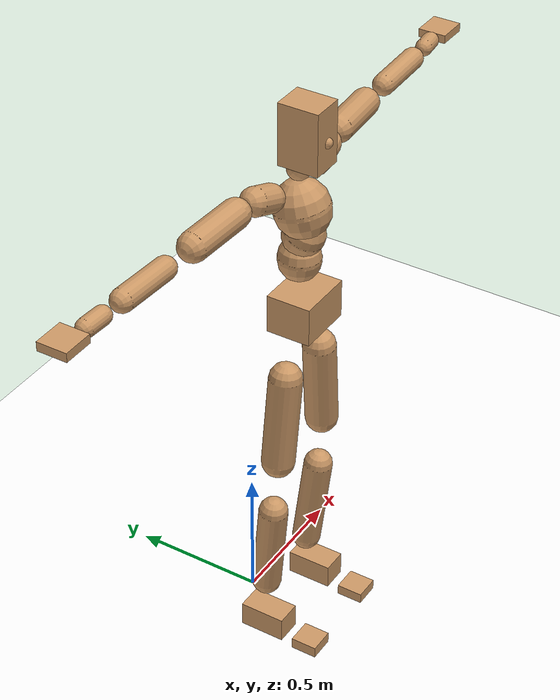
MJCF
<mujoco model="humanoid">
  <option integrator="implicitfast" />

  <visual>
    <global offwidth="1280" offheight="960" />
    <headlight active="1" ambient="0.34 0.34 0.34" diffuse="0.5 0.5 0.5" />
  </visual>

  <default>
    <joint damping="2" stiffness="2" armature="0.01" limited="true" solimplimit="0 .99 .01" />
    <geom condim="1" friction="0.7 0.005 0.0001" solimp=".99 .99 .003" solref="0.015 1" margin="0.001" rgba="0.8 0.6 .4 1" />
    <default class="smplcontact">
      <geom condim="3" friction="1. 0.005 0.0001" solref="0.015 1" solimp="0.98 0.98 0.001" priority="1" />
    </default>
    <default class="stiff_medium">
      <joint stiffness="10" />
    </default>
    <default class="stiff_medium_higher">
      <joint stiffness="50" />
    </default>
    <default class="stiff_high">
      <joint stiffness="100" />
    </default>
  </default>

  <asset>
    <texture type="skybox" builtin="gradient" rgb1="0.99 0.99 0.99" rgb2="0.608 0.828 0.892" width="100" />
    <texture builtin="flat" height="1278" mark="cross" markrgb="1 1 1" name="texgeom" random="0.01" rgb1="0.8 0.6 0.4" rgb2="0.8 0.6 0.4" type="cube" width="127" />
    <texture name="texplane" type="2d" builtin="checker" markrgb="1 1 1" rgb1="0.756 0.772 0.76" rgb2="0.6 0.6 0.6" width="100" height="100" />
    <material name="MatPlane" reflectance="0.5" texture="texplane" texrepeat="1 1" texuniform="true" />
    <material name="geom" texture="texgeom" texuniform="true" />
  </asset>

  <worldbody>
    <light name="tracking_light" pos="0 0 7" dir="0 0 -1" directional="true" cutoff="100" exponent="1" diffuse="1 1 1" specular="0.1 0.1 0.1" mode="trackcom" />
    <camera name="back" pos="0 3 2.4" xyaxes="-1 0 0 0 -1 2" mode="trackcom" />
    <camera name="side" pos="-3 0 2.4" xyaxes="0 -1 0 1 0 2" mode="trackcom" />
    <camera name="front_side" pos="-2.8 -2.8 0.8" xyaxes="0.5 -0.5 0 0.1 0.1 1" mode="trackcom" />
    <geom condim="3" name="floor" pos="0 0 0" rgba="1 1 1 1" size="100 100 .2" type="plane" material="MatPlane" />
    <body name="Pelvis" pos="-0.0018 -0.2233 1.39425" euler="90 0 0">
      <site name="Pelvis" size="0.01" />
      <freejoint name="Pelvis" />
      <geom type="box" pos="-0.0000 -0.0121 -0.0055" size="0.1069 0.0722 0.083" quat="1.0000 0.0000 0.0000 0.0000" density="3165.830099" name="Pelvis" />
      <body name="L_Hip" pos="0.10425 -0.1371 -0.0102">
        <joint name="L_Hip_x" type="hinge" pos="0 0 0" axis="1 0 0" stiffness="20.015620714285713" range="-160.0 22.92" class="stiff_medium" damping="35.83287359117287" armature="0.02851095036953482"/>
        <joint name="L_Hip_y" type="hinge" pos="0 0 0" axis="0 1 0" stiffness="19.866269693877552" range="-70.0 70.0" class="stiff_medium" damping="19.516878138369275" armature="0.01917363139318229"/>
        <joint name="L_Hip_z" type="hinge" pos="0 0 0" axis="0 0 1" stiffness="19.87905693877551" range="-28.65 90.0" class="stiff_medium" damping="23.812563344986483" armature="0.028524400066129184"/>
        <geom type="capsule" density="2040.816327" fromto="0.01035 -0.1125 -0.00135 0.0411 -0.4503 -0.0054" size="0.0615" name="L_Hip" />
        <body name="L_Knee" pos="0.05145 -0.5628 -0.00675">
          <joint name="L_Knee_x" type="hinge" pos="0 0 0" axis="1 0 0" range="-5.16 171.89" damping="17.99088108060037" armature="0.026396428561925714" stiffness="3.8318607346938776"/>
          <joint name="L_Knee_y" type="hinge" pos="0 0 0" axis="0 1 0" range="-4.58 6.88" damping="14.933138115539819" armature="0.017722990590982583" stiffness="3.932015113945578"/>
          <joint name="L_Knee_z" type="hinge" pos="0 0 0" axis="0 0 1" range="-6.88 4.58" damping="17.905219969869155" armature="0.02645515953053641" stiffness="3.7870318571428574"/>
          <geom type="capsule" density="1234.567901" fromto="-0.00405 -0.1194 -0.01305 -0.01635 -0.4776 -0.0525" size="0.0541" name="L_Knee" />
          <body name="L_Ankle" pos="-0.0204 -0.597 -0.06555">
            <joint name="L_Ankle_x" type="hinge" pos="0 0 0" axis="1 0 0" range="-45.84 45.84" class="stiff_medium" damping="9.919510798854784" armature="0.01822161009048087" stiffness="15.0"/>
            <joint name="L_Ankle_y" type="hinge" pos="0 0 0" axis="0 1 0" range="-74.48 22.92" class="stiff_medium" damping="4.917952818000751" armature="0.017915748088949288" stiffness="15.0"/>
            <joint name="L_Ankle_z" type="hinge" pos="0 0 0" axis="0 0 1" range="-4.58 4.58" class="stiff_medium" damping="9.26996898132537" armature="0.015913393502728614" stiffness="15.0"/>
            <geom type="box" pos="0.03495 -0.03585 0.0363" size="0.0483 0.0464 0.085" quat="1.0000 0.0000 0.0000 0.0000" density="449.071558" name="L_Ankle" class="smplcontact" />
            <body name="L_Toe" pos="0.0396 -0.0837 0.17895">
              <joint name="L_Toe_x" type="hinge" pos="0 0 0" axis="1 0 0" range="-91.67 22.92" armature="0.014752348892846632" damping="2.9751318182070485" stiffness="3.0"/>
              <joint name="L_Toe_y" type="hinge" pos="0 0 0" axis="0 1 0" range="-4.58 4.58" armature="0.013348413454862205" damping="2.8300261611718933" stiffness="3.0"/>
              <joint name="L_Toe_z" type="hinge" pos="0 0 0" axis="0 0 1" range="-4.58 4.58" armature="0.01050973156573245" damping="2.5111429547995607" stiffness="3.0"/>
              <geom type="box" pos="-0.0045 0.00825 0.0372" size="0.0478 0.02 0.0496" quat="1.0000 0.0000 0.0000 0.0000" density="423.206892" name="L_Toe" class="smplcontact" />
            </body>
          </body>
        </body>
      </body>
      <body name="R_Hip" pos="-0.10155 -0.13575 -0.00645">
        <joint name="R_Hip_x" type="hinge" pos="0 0 0" axis="1 0 0" stiffness="20.015620714285713" range="-160.0 22.92" class="stiff_medium" damping="35.83287359117287" armature="0.02851095036953482"/>
        <joint name="R_Hip_y" type="hinge" pos="0 0 0" axis="0 1 0" stiffness="19.866269693877552" range="-70.0 70.0" class="stiff_medium" damping="19.516878138369275" armature="0.01917363139318229"/>
        <joint name="R_Hip_z" type="hinge" pos="0 0 0" axis="0 0 1" stiffness="19.87905693877551" range="-90.0 28.65" class="stiff_medium" damping="23.812563344986483" armature="0.028524400066129184"/>
        <geom type="capsule" density="2040.816327" fromto="-0.01155 -0.11475 -0.0027 -0.0459 -0.45915 -0.01065" size="0.0606" name="R_Hip" />
        <body name="R_Knee" pos="-0.05745 -0.5739 -0.01335">
          <joint name="R_Knee_x" type="hinge" pos="0 0 0" axis="1 0 0" range="-5.16 171.89" damping="17.99088108060037" armature="0.026396428561925714" stiffness="3.8318607346938776"/>
          <joint name="R_Knee_y" type="hinge" pos="0 0 0" axis="0 1 0" range="-6.88 4.58" damping="14.933138115539819" armature="0.017722990590982583" stiffness="3.932015113945578"/>
          <joint name="R_Knee_z" type="hinge" pos="0 0 0" axis="0 0 1" range="-4.58 6.88" damping="17.905219969869155" armature="0.02645515953053641" stiffness="3.7870318571428574"/>
          <geom type="capsule" density="1234.567901" fromto="0.0048 -0.11955 -0.01275 0.0189 -0.47805 -0.0507" size="0.0541" name="R_Knee" />
          <body name="R_Ankle" pos="0.0237 -0.5976 -0.06345">
            <joint name="R_Ankle_x" type="hinge" pos="0 0 0" axis="1 0 0" range="-45.84 45.84" class="stiff_medium" damping="9.919510798854784" armature="0.01822161009048087" stiffness="15.0"/>
            <joint name="R_Ankle_y" type="hinge" pos="0 0 0" axis="0 1 0" range="-22.92 74.48" class="stiff_medium" damping="4.917952818000751" armature="0.017915748088949288" stiffness="15.0"/>
            <joint name="R_Ankle_z" type="hinge" pos="0 0 0" axis="0 0 1" range="-4.58 4.58" class="stiff_medium" damping="9.26996898132537" armature="0.015913393502728614" stiffness="15.0"/>
            <geom type="box" pos="-0.0318 -0.0261 0.0384" size="0.0483 0.0478 0.0865" quat="1.0000 0.0000 0.0000 0.0000" density="434.700981" name="R_Ankle" class="smplcontact" />
            <body name="R_Toe" pos="-0.0381 -0.07215 0.18495">
              <joint name="R_Toe_x" type="hinge" pos="0 0 0" axis="1 0 0" range="-91.67 22.92" armature="0.014752348892846632" damping="2.9751318182070485" stiffness="3.0"/>
              <joint name="R_Toe_y" type="hinge" pos="0 0 0" axis="0 1 0" range="-4.58 4.58" armature="0.013348413454862205" damping="2.8300261611718933" stiffness="3.0"/>
              <joint name="R_Toe_z" type="hinge" pos="0 0 0" axis="0 0 1" range="-4.58 4.58" armature="0.01050973156573245" damping="2.5111429547995607" stiffness="3.0"/>
              <geom type="box" pos="0.0063 0.00675 0.03405" size="0.0479 0.0216 0.0493" quat="1.0000 0.0000 0.0000 0.0000" density="407.384095" name="R_Toe" class="smplcontact" />
            </body>
          </body>
        </body>
      </body>
      <body name="Torso" pos="-0.0025 0.109 -0.0267">
        <joint name="Torso_x" type="hinge" pos="0 0 0" axis="1 0 0" range="-25.78 57.3" class="stiff_medium" damping="17.81661784253542" armature="0.012204442824088032" stiffness="11.55979291666667"/>
        <joint name="Torso_y" type="hinge" pos="0 0 0" axis="0 1 0" range="-57.3 57.3" class="stiff_high" damping="32.66648617457636" armature="0.023482633249027433" stiffness="113.6051595744681"/>
        <joint name="Torso_z" type="hinge" pos="0 0 0" axis="0 0 1" range="-34.38 34.38" class="stiff_high" damping="26.53205559463283" armature="0.016035100718302133" stiffness="109.75141136363638"/>
        <geom type="capsule" density="2040.816327" fromto="0.0025 0.0608 0.0005 0.003 0.0743 0.0006" size="0.0769" name="Torso" />
        <body name="Spine" pos="0.0055 0.1352 0.0011">
          <joint name="Spine_x" type="hinge" pos="0 0 0" axis="1 0 0" stiffness="11.652306458333332" range="-25.78 57.3" class="stiff_medium" damping="18.346849955919502" armature="0.012838923235543203"/>
          <joint name="Spine_y" type="hinge" pos="0 0 0" axis="0 1 0" stiffness="12.490174523809525" range="-57.3 57.3" class="stiff_high" damping="13.727844217436887" armature="0.023575244397477886"/>
          <joint name="Spine_z" type="hinge" pos="0 0 0" axis="0 0 1" stiffness="24.140002666666668" range="-34.38 34.38" class="stiff_high" damping="18.060617405335822" armature="0.018767022520783622"/>
          <geom type="capsule" density="2040.816327" fromto="0.0007 0.0238 0.0114 0.0008 0.0291 0.014" size="0.0755" name="Spine" />
          <body name="Chest" pos="0.0015 0.0529 0.0254">
            <joint name="Chest_x" type="hinge" pos="0 0 0" axis="1 0 0" stiffness="12.52777088888889" range="-25.78 57.3" class="stiff_medium" damping="19.323420684641803" armature="0.013246821899117767"/>
            <joint name="Chest_y" type="hinge" pos="0 0 0" axis="0 1 0" stiffness="14.856075609756099" range="-57.3 57.3" class="stiff_high" damping="14.973397185345426" armature="0.02358069574104024"/>
            <joint name="Chest_z" type="hinge" pos="0 0 0" axis="0 0 1" stiffness="24.504841860465113" range="-34.38 34.38" class="stiff_high" damping="18.776413152497923" armature="0.019982087898338156"/>
            <geom type="capsule" density="2040.816327" fromto="-0.0009 0.0682 -0.0173 -0.001 0.0833 -0.0212" size="0.1002" name="Chest" />
            <body name="Neck" pos="-0.0028 0.2139 -0.0429">
              <joint name="Neck_x" type="hinge" pos="0 0 0" axis="1 0 0" range="-28.65 57.3" class="stiff_medium_higher" damping="9.99999999999999" armature="0.00999999999999998" stiffness="50.0"/>
              <joint name="Neck_y" type="hinge" pos="0 0 0" axis="0 1 0" range="-40.11 40.11" class="stiff_medium_higher" damping="10.0" armature="0.01" stiffness="50.0"/>
              <joint name="Neck_z" type="hinge" pos="0 0 0" axis="0 0 1" range="-40.11 40.11" class="stiff_medium_higher" damping="9.999999999999996" armature="0.009999999999999993" stiffness="50.0"/>
              <geom type="capsule" density="1000" fromto="0.001 0.013 0.0103 0.0041 0.052 0.0411" size="0.0436" name="Neck" />
              <body name="Head" pos="0.0052 0.065 0.0513">
                <joint name="Head_x" type="hinge" pos="0 0 0" axis="1 0 0" range="-28.65 57.3" class="stiff_medium_higher" damping="1.9999999999999996" armature="0.009999999999999995" stiffness="50.0"/>
                <joint name="Head_y" type="hinge" pos="0 0 0" axis="0 1 0" range="-40.11 40.11" class="stiff_medium_higher" damping="2.0" armature="0.01" stiffness="50.0"/>
                <joint name="Head_z" type="hinge" pos="0 0 0" axis="0 0 1" range="-40.11 40.11" class="stiff_medium_higher" damping="2.000000000000002" armature="0.010000000000000024" stiffness="50.0"/>
                <geom type="box" pos="-0.0042 0.0876 -0.0116" size="0.0606 0.1154 0.076" quat="1.0000 0.0000 0.0000 0.0000" density="1018.069894" name="Head" />
                <geom type="capsule" name="nose" size="0.02 0.01" pos="0 0.07 0.05" quat="1 0 0 0" mass="0" contype="0" conaffinity="0" />
              </body>
            </body>
            <body name="L_Thorax" pos="0.11032 0.17038 -0.04774">
              <joint name="L_Thorax_x" type="hinge" pos="0 0 0" axis="1 0 0" range="-10.89 4.58" class="stiff_medium_higher" damping="36.24085805879008" armature="0.018856138634744495" stiffness="87.06712295918368"/>
              <joint name="L_Thorax_y" type="hinge" pos="0 0 0" axis="0 1 0" range="-28.65 17.19" class="stiff_medium_higher" damping="40.96620891880995" armature="0.02389813212990586" stiffness="87.78041020408163"/>
              <joint name="L_Thorax_z" type="hinge" pos="0 0 0" axis="0 0 1" range="-31.51 40.11" class="stiff_medium_higher" damping="40.96835729355361" armature="0.023902786052476366" stiffness="87.77252448979593"/>
              <geom type="capsule" density="1000" fromto="0.02548 0.00854 -0.00252 0.10192 0.03416 -0.00994" size="0.0521" name="L_Thorax" />
              <body name="L_Shoulder" pos="0.1274 0.0427 -0.01246">
                <joint name="L_Shoulder_x" type="hinge" pos="0 0 0" axis="1 0 0" range="-97.4 97.4" class="stiff_medium" damping="10.216467793124856" armature="0.016750975720821605" stiffness="17.30848"/>
                <joint name="L_Shoulder_y" type="hinge" pos="0 0 0" axis="0 1 0" range="-108.86 80.21" class="stiff_medium" damping="12.210584630805666" armature="0.023662310849895674" stiffness="17.503030918367347"/>
                <joint name="L_Shoulder_z" type="hinge" pos="0 0 0" axis="0 0 1" range="-97.4 85.94" class="stiff_medium" damping="12.207996623471665" armature="0.02366780094775564" stiffness="17.491553877551024"/>
                <geom type="capsule" density="1000" fromto="0.07266 -0.00364 -0.0077 0.29078 -0.01428 -0.0308" size="0.0517" name="L_Shoulder" />
                <body name="L_Elbow" pos="0.36344 -0.01792 -0.0385">
                  <joint name="L_Elbow_x" type="hinge" pos="0 0 0" axis="1 0 0" range="-17.19 4.58" damping="7.586581525572629" armature="0.013620348817446497" stiffness="3.380601775510204"/>
                  <joint name="L_Elbow_y" type="hinge" pos="0 0 0" axis="0 1 0" range="-180.0 17.19" damping="9.758671052618116" armature="0.022523674987219192" stiffness="3.382455510204082"/>
                  <joint name="L_Elbow_z" type="hinge" pos="0 0 0" axis="0 0 1" range="-100.84 4.58" damping="9.760335979040741" armature="0.022552387617329552" stiffness="3.3793019183673465"/>
                  <geom type="capsule" density="1000" fromto="0.06972 0.00252 -0.00028 0.27916 0.01008 -0.00126" size="0.0405" name="L_Elbow" />
                  <body name="L_Wrist" pos="0.34888 0.0126 -0.00168">
                    <joint name="L_Wrist_x" type="hinge" pos="0 0 0" axis="1 0 0" range="-180.0 22.92" armature="0.013168550139583717" damping="2.812193940526939" stiffness="3.002773530612245"/>
                    <joint name="L_Wrist_y" type="hinge" pos="0 0 0" axis="0 1 0" range="-17.19 17.19" armature="0.019145926143815824" damping="3.407656593319352" stiffness="3.0325311428571426"/>
                    <joint name="L_Wrist_z" type="hinge" pos="0 0 0" axis="0 0 1" range="-22.92 22.92" armature="0.019468640829170387" damping="3.429448500174673" stiffness="3.0205285306122445"/>
                    <geom type="capsule" density="1000" fromto="0.02352 -0.00224 -0.0042 0.09408 -0.0091 -0.0168" size="0.0318" name="L_Wrist" class="smplcontact" />
                    <body name="L_Hand" pos="0.1176 -0.01148 -0.02086">
                      <joint name="L_Hand_x" type="hinge" pos="0 0 0" axis="1 0 0" range="-17.19 17.19" armature="0.010418235140997987" damping="2.415411285673492" stiffness="2.8000000000000003"/>
                      <joint name="L_Hand_y" type="hinge" pos="0 0 0" axis="0 1 0" range="-51.57 51.57" armature="0.015057977012994413" damping="2.9038710589964" stiffness="2.8000000000000003"/>
                      <joint name="L_Hand_z" type="hinge" pos="0 0 0" axis="0 0 1" range="-91.67 91.67" armature="0.016294763602145435" damping="3.0207726854567265" stiffness="2.8000000000000003"/>
                      <geom type="box" pos="0.06902 0.0014 -0.00812" size="0.0585 0.0158 0.0538" quat="1.0000 0.0000 0.0000 0.0000" density="400.552564" name="L_Hand" class="smplcontact" />
                    </body>
                  </body>
                </body>
              </body>
            </body>
            <body name="R_Thorax" pos="-0.11452 0.16632 -0.05404">
              <joint name="R_Thorax_x" type="hinge" pos="0 0 0" axis="1 0 0" range="-10.89 4.58" class="stiff_medium_higher" damping="36.24085805879008" armature="0.018856138634744495" stiffness="87.06712295918368"/>
              <joint name="R_Thorax_y" type="hinge" pos="0 0 0" axis="0 1 0" range="-17.19 28.65" class="stiff_medium_higher" damping="40.96620891880995" armature="0.02389813212990586" stiffness="87.78041020408163"/>
              <joint name="R_Thorax_z" type="hinge" pos="0 0 0" axis="0 0 1" range="-40.11 31.51" class="stiff_medium_higher" damping="40.96835729355361" armature="0.023902786052476366" stiffness="87.77252448979593"/>
              <geom type="capsule" density="1000" fromto="-0.02688 0.0091 -0.00252 -0.10752 0.0364 -0.01022" size="0.0511" name="R_Thorax" />
              <body name="R_Shoulder" pos="-0.1344 0.04564 -0.01274">
                <joint name="R_Shoulder_x" type="hinge" pos="0 0 0" axis="1 0 0" range="-97.4 97.4" class="stiff_medium" damping="10.216467793124856" armature="0.016750975720821605" stiffness="17.30848"/>
                <joint name="R_Shoulder_y" type="hinge" pos="0 0 0" axis="0 1 0" range="-80.21 108.86" class="stiff_medium" damping="12.210584630805666" armature="0.023662310849895674" stiffness="17.503030918367347"/>
                <joint name="R_Shoulder_z" type="hinge" pos="0 0 0" axis="0 0 1" range="-85.94 97.4" class="stiff_medium" damping="12.207996623471665" armature="0.02366780094775564" stiffness="17.491553877551024"/>
                <geom type="capsule" density="1000" fromto="-0.07098 -0.00378 -0.00602 -0.2842 -0.01498 -0.02394" size="0.0531" name="R_Shoulder" />
                <body name="R_Elbow" pos="-0.35518 -0.01862 -0.02996">
                  <joint name="R_Elbow_x" type="hinge" pos="0 0 0" axis="1 0 0" range="-17.19 4.58" damping="7.586581525572629" armature="0.013620348817446497" stiffness="3.380601775510204"/>
                  <joint name="R_Elbow_y" type="hinge" pos="0 0 0" axis="0 1 0" range="-17.19 180.0" damping="9.758671052618116" armature="0.022523674987219192" stiffness="3.382455510204082"/>
                  <joint name="R_Elbow_z" type="hinge" pos="0 0 0" axis="0 0 1" range="-4.58 100.84" damping="9.760335979040741" armature="0.022552387617329552" stiffness="3.3793019183673465"/>
                  <geom type="capsule" density="1000" fromto="-0.07154 0.00224 -0.00154 -0.28588 0.00868 -0.00616" size="0.0408" name="R_Elbow" />
                  <body name="R_Wrist" pos="-0.35742 0.01092 -0.00784">
                    <joint name="R_Wrist_x" type="hinge" pos="0 0 0" axis="1 0 0" range="-180.0 22.92" armature="0.013168550139583717" damping="2.812193940526939" stiffness="3.002773530612245"/>
                    <joint name="R_Wrist_y" type="hinge" pos="0 0 0" axis="0 1 0" range="-17.19 17.19" armature="0.019145926143815824" damping="3.407656593319352" stiffness="3.0325311428571426"/>
                    <joint name="R_Wrist_z" type="hinge" pos="0 0 0" axis="0 0 1" range="-22.92 22.92" armature="0.019468640829170387" damping="3.429448500174673" stiffness="3.0205285306122445"/>
                    <geom type="capsule" density="1000" fromto="-0.02366 -0.00168 -0.00294 -0.09478 -0.00686 -0.01162" size="0.0326" name="R_Wrist" class="smplcontact" />
                    <body name="R_Hand" pos="-0.11844 -0.00854 -0.01442">
                      <joint name="R_Hand_x" type="hinge" pos="0 0 0" axis="1 0 0" range="-17.19 17.19" armature="0.010418235140997987" damping="2.415411285673492" stiffness="2.8000000000000003"/>
                      <joint name="R_Hand_y" type="hinge" pos="0 0 0" axis="0 1 0" range="-51.57 51.57" armature="0.015057977012994413" damping="2.9038710589964" stiffness="2.8000000000000003"/>
                      <joint name="R_Hand_z" type="hinge" pos="0 0 0" axis="0 0 1" range="-91.67 91.67" armature="0.016294763602145435" damping="3.0207726854567265" stiffness="2.8000000000000003"/>
                      <geom type="box" pos="-0.06468 -0.00126 -0.01106" size="0.0569 0.0164 0.0546" quat="1.0000 0.0000 0.0000 0.0000" density="403.679611" name="R_Hand" class="smplcontact" />
                    </body>
                  </body>
                </body>
              </body>
            </body>
          </body>
        </body>
      </body>
    </body>
  </worldbody>
  <actuator>
    <general name="L_Hip_x" joint="L_Hip_x" biastype="affine" gainprm="575.1089582783409" biasprm="-430.985873610294 -360.28117285714285 -4.7777164788230495" ctrllimited="true" ctrlrange="-1 1" forcerange="-720.5623457142857 720.5623457142857" />
    <general name="L_Hip_y" joint="L_Hip_y" biastype="affine" gainprm="436.88208847163486" biasprm="0.0 -357.5928544897959 -3.903375627673855" ctrllimited="true" ctrlrange="-1 1" forcerange="-715.1857089795918 715.1857089795918" />
    <general name="L_Hip_z" joint="L_Hip_z" biastype="affine" gainprm="370.49589223625946" biasprm="191.57120091609366 -357.82302489795916 -4.762512668997297" ctrllimited="true" ctrlrange="-1 1" forcerange="-715.6460497959183 715.6460497959183" />
    <general name="L_Knee_x" joint="L_Knee_x" biastype="affine" gainprm="532.8384166851074" biasprm="501.7800012081782 -344.867466122449 -4.497720270150093" ctrllimited="true" ctrlrange="-1 1" forcerange="-689.734932244898 689.734932244898" />
    <general name="L_Knee_y" joint="L_Knee_y" biastype="affine" gainprm="35.39074276489669" biasprm="7.10285413257089 -353.88136025510204 -3.7332845288849548" ctrllimited="true" ctrlrange="-1 1" forcerange="-707.7627205102041 707.7627205102041" />
    <general name="L_Knee_z" joint="L_Knee_z" biastype="affine" gainprm="34.085797336654615" biasprm="-6.840954090253544 -340.83286714285714 -4.476304992467289" ctrllimited="true" ctrlrange="-1 1" forcerange="-681.6657342857143 681.6657342857143" />
    <general name="L_Ankle_x" joint="L_Ankle_x" biastype="affine" gainprm="108.0079554304171" biasprm="0.0 -135.0 -3.3065035996182615" ctrllimited="true" ctrlrange="-1 1" forcerange="-270.0 270.0" />
    <general name="L_Ankle_y" joint="L_Ankle_y" biastype="affine" gainprm="114.74667167236721" biasprm="-60.742693957158664 -135.0 -3.278635212000501" ctrllimited="true" ctrlrange="-1 1" forcerange="-270.0 270.0" />
    <general name="L_Ankle_z" joint="L_Ankle_z" biastype="affine" gainprm="10.791370765080938" biasprm="0.0 -135.0 -3.0899896604417902" ctrllimited="true" ctrlrange="-1 1" forcerange="-270.0 270.0" />
    <general name="L_Toe_x" joint="L_Toe_x" biastype="affine" gainprm="107.99853065245631" biasprm="-64.79534848028948 -108.0 -1.1900527272828194" ctrllimited="true" ctrlrange="-1 1" forcerange="-216.0 216.0" />
    <general name="L_Toe_y" joint="L_Toe_y" biastype="affine" gainprm="8.633096612064751" biasprm="0.0 -108.0 -1.1320104644687574" ctrllimited="true" ctrlrange="-1 1" forcerange="-216.0 216.0" />
    <general name="L_Toe_z" joint="L_Toe_z" biastype="affine" gainprm="8.633096612064751" biasprm="0.0 -108.0 -1.0044571819198242" ctrllimited="true" ctrlrange="-1 1" forcerange="-216.0 216.0" />
    <general name="R_Hip_x" joint="R_Hip_x" biastype="affine" gainprm="575.1089582783409" biasprm="-430.985873610294 -360.28117285714285 -4.7777164788230495" ctrllimited="true" ctrlrange="-1 1" forcerange="-720.5623457142857 720.5623457142857" />
    <general name="R_Hip_y" joint="R_Hip_y" biastype="affine" gainprm="436.88208847163486" biasprm="0.0 -357.5928544897959 -3.903375627673855" ctrllimited="true" ctrlrange="-1 1" forcerange="-715.1857089795918 715.1857089795918" />
    <general name="R_Hip_z" joint="R_Hip_z" biastype="affine" gainprm="370.49589223625946" biasprm="-191.57120091609366 -357.82302489795916 -4.762512668997297" ctrllimited="true" ctrlrange="-1 1" forcerange="-715.6460497959183 715.6460497959183" />
    <general name="R_Knee_x" joint="R_Knee_x" biastype="affine" gainprm="532.8384166851074" biasprm="501.7800012081782 -344.867466122449 -4.497720270150093" ctrllimited="true" ctrlrange="-1 1" forcerange="-689.734932244898 689.734932244898" />
    <general name="R_Knee_y" joint="R_Knee_y" biastype="affine" gainprm="35.39074276489669" biasprm="-7.10285413257089 -353.88136025510204 -3.7332845288849548" ctrllimited="true" ctrlrange="-1 1" forcerange="-707.7627205102041 707.7627205102041" />
    <general name="R_Knee_z" joint="R_Knee_z" biastype="affine" gainprm="34.085797336654615" biasprm="6.840954090253544 -340.83286714285714 -4.476304992467289" ctrllimited="true" ctrlrange="-1 1" forcerange="-681.6657342857143 681.6657342857143" />
    <general name="R_Ankle_x" joint="R_Ankle_x" biastype="affine" gainprm="108.0079554304171" biasprm="0.0 -135.0 -3.3065035996182615" ctrllimited="true" ctrlrange="-1 1" forcerange="-270.0 270.0" />
    <general name="R_Ankle_y" joint="R_Ankle_y" biastype="affine" gainprm="114.74667167236721" biasprm="60.742693957158664 -135.0 -3.278635212000501" ctrllimited="true" ctrlrange="-1 1" forcerange="-270.0 270.0" />
    <general name="R_Ankle_z" joint="R_Ankle_z" biastype="affine" gainprm="10.791370765080938" biasprm="0.0 -135.0 -3.0899896604417902" ctrllimited="true" ctrlrange="-1 1" forcerange="-270.0 270.0" />
    <general name="R_Toe_x" joint="R_Toe_x" biastype="affine" gainprm="107.99853065245631" biasprm="-64.79534848028948 -108.0 -1.1900527272828194" ctrllimited="true" ctrlrange="-1 1" forcerange="-216.0 216.0" />
    <general name="R_Toe_y" joint="R_Toe_y" biastype="affine" gainprm="8.633096612064751" biasprm="0.0 -108.0 -1.1320104644687574" ctrllimited="true" ctrlrange="-1 1" forcerange="-216.0 216.0" />
    <general name="R_Toe_z" joint="R_Toe_z" biastype="affine" gainprm="8.633096612064751" biasprm="0.0 -108.0 -1.0044571819198242" ctrllimited="true" ctrlrange="-1 1" forcerange="-216.0 216.0" />
    <general name="Torso_x" joint="Torso_x" biastype="affine" gainprm="201.14310764492842" biasprm="76.31235860577928 -277.43503000000004 -4.7510980913427785" ctrllimited="true" ctrlrange="-1 1" forcerange="-416.1525450000001 416.1525450000001" />
    <general name="Torso_y" joint="Torso_y" biastype="affine" gainprm="272.67246693299046" biasprm="0.0 -272.65238297872344 -6.533297234915272" ctrllimited="true" ctrlrange="-1 1" forcerange="-408.9785744680852 408.9785744680852" />
    <general name="Torso_z" joint="Torso_z" biastype="affine" gainprm="158.05367395985348" biasprm="0.0 -263.4033872727273 -5.306411118926566" ctrllimited="true" ctrlrange="-1 1" forcerange="-395.10508090909093 395.10508090909093" />
    <general name="Spine_x" joint="Spine_x" biastype="affine" gainprm="202.75286496534218" biasprm="76.9230898375973 -279.655355 -4.892493321578534" ctrllimited="true" ctrlrange="-1 1" forcerange="-419.4830325 419.4830325" />
    <general name="Spine_y" joint="Spine_y" biastype="affine" gainprm="299.7862696190556" biasprm="0.0 -299.7641885714286 -6.863922108718444" ctrllimited="true" ctrlrange="-1 1" forcerange="-449.6462828571429 449.6462828571429" />
    <general name="Spine_z" joint="Spine_z" biastype="affine" gainprm="173.82082214076556" biasprm="0.0 -289.680032 -6.020205801778608" ctrllimited="true" ctrlrange="-1 1" forcerange="-434.520048 434.520048" />
    <general name="Chest_x" joint="Chest_x" biastype="affine" gainprm="217.98615136277013" biasprm="82.70249748380492 -300.6665013333334 -5.152912182571147" ctrllimited="true" ctrlrange="-1 1" forcerange="-450.999752 450.999752" />
    <general name="Chest_y" joint="Chest_y" biastype="affine" gainprm="356.57207829543177" biasprm="0.0 -356.5458146341464 -7.486698592672713" ctrllimited="true" ctrlrange="-1 1" forcerange="-534.8187219512196 534.8187219512196" />
    <general name="Chest_z" joint="Chest_z" biastype="affine" gainprm="176.44785783296902" biasprm="0.0 -294.0581023255814 -6.258804384165974" ctrllimited="true" ctrlrange="-1 1" forcerange="-441.08715348837205 441.08715348837205" />
    <general name="Neck_x" joint="Neck_x" biastype="affine" gainprm="27.00198885760427" biasprm="9.000662952534757 -36.0 -0.7999999999999993" ctrllimited="true" ctrlrange="-1 1" forcerange="-72.0 72.0" />
    <general name="Neck_y" joint="Neck_y" biastype="affine" gainprm="25.20185626709732" biasprm="0.0 -36.0 -0.8" ctrllimited="true" ctrlrange="-1 1" forcerange="-72.0 72.0" />
    <general name="Neck_z" joint="Neck_z" biastype="affine" gainprm="25.20185626709732" biasprm="0.0 -36.0 -0.7999999999999998" ctrllimited="true" ctrlrange="-1 1" forcerange="-72.0 72.0" />
    <general name="Head_x" joint="Head_x" biastype="affine" gainprm="18.001325905069514" biasprm="6.000441968356505 -24.0 -0.7999999999999998" ctrllimited="true" ctrlrange="-1 1" forcerange="-48.0 48.0" />
    <general name="Head_y" joint="Head_y" biastype="affine" gainprm="16.801237511398213" biasprm="0.0 -24.0 -0.8" ctrllimited="true" ctrlrange="-1 1" forcerange="-48.0 48.0" />
    <general name="Head_z" joint="Head_z" biastype="affine" gainprm="16.801237511398213" biasprm="0.0 -24.0 -0.8000000000000009" ctrllimited="true" ctrlrange="-1 1" forcerange="-48.0 48.0" />
    <general name="L_Thorax_x" joint="L_Thorax_x" biastype="affine" gainprm="28.21000227853141" biasprm="-11.506471517616887 -208.96109510204082 -2.899268644703207" ctrllimited="true" ctrlrange="-1 1" forcerange="-417.92219020408163 417.92219020408163" />
    <general name="L_Thorax_y" joint="L_Thorax_y" biastype="affine" gainprm="84.27540118209936" biasprm="-21.06885029552484 -210.6729844897959 -3.277296713504796" ctrllimited="true" ctrlrange="-1 1" forcerange="-421.3459689795918 421.3459689795918" />
    <general name="L_Thorax_z" joint="L_Thorax_z" biastype="affine" gainprm="131.65929338702185" biasprm="15.809409705785923 -210.6540587755102 -3.2774685834842887" ctrllimited="true" ctrlrange="-1 1" forcerange="-421.3081175510204 421.3081175510204" />
    <general name="L_Shoulder_x" joint="L_Shoulder_x" biastype="affine" gainprm="141.23310021032776" biasprm="0.0 -83.080704 -2.724391411499962" ctrllimited="true" ctrlrange="-1 1" forcerange="-166.161408 166.161408" />
    <general name="L_Shoulder_y" joint="L_Shoulder_y" biastype="affine" gainprm="138.61955280584408" biasprm="-21.005184259202586 -84.01454840816328 -3.256155901548178" ctrllimited="true" ctrlrange="-1 1" forcerange="-168.02909681632656 168.02909681632656" />
    <general name="L_Shoulder_z" joint="L_Shoulder_z" biastype="affine" gainprm="134.33037540273168" biasprm="-8.396564318290107 -83.9594586122449 -3.2554657662591104" ctrllimited="true" ctrlrange="-1 1" forcerange="-167.9189172244898 167.9189172244898" />
    <general name="L_Elbow_x" joint="L_Elbow_x" biastype="affine" gainprm="23.120771250680953" biasprm="-13.39241733904855 -121.70166391836734 -1.2138530440916206" ctrllimited="true" ctrlrange="-1 1" forcerange="-243.4033278367347 243.4033278367347" />
    <general name="L_Elbow_y" joint="L_Elbow_y" biastype="affine" gainprm="209.53995807470082" biasprm="-173.0067476755517 -121.76839836734695 -1.5613873684188988" ctrllimited="true" ctrlrange="-1 1" forcerange="-243.5367967346939 243.5367967346939" />
    <general name="L_Elbow_z" joint="L_Elbow_z" biastype="affine" gainprm="111.91798423395207" biasprm="-102.19337091975173 -121.65486906122447 -1.5616537566465185" ctrllimited="true" ctrlrange="-1 1" forcerange="-243.30973812244895 243.30973812244895" />
    <general name="L_Wrist_x" joint="L_Wrist_x" biastype="affine" gainprm="31.904067455407095" biasprm="-24.696880129584795 -18.01664118367347 -1.1248775762107757" ctrllimited="true" ctrlrange="-1 1" forcerange="-36.03328236734694 36.03328236734694" />
    <general name="L_Wrist_y" joint="L_Wrist_y" biastype="affine" gainprm="5.458958141984436" biasprm="0.0 -18.195186857142858 -1.363062637327741" ctrllimited="true" ctrlrange="-1 1" forcerange="-36.390373714285715 36.390373714285715" />
    <general name="L_Wrist_z" joint="L_Wrist_z" biastype="affine" gainprm="7.249802464681568" biasprm="0.0 -18.123171183673467 -1.3717794000698693" ctrllimited="true" ctrlrange="-1 1" forcerange="-36.246342367346934 36.246342367346934" />
    <general name="L_Hand_x" joint="L_Hand_x" biastype="affine" gainprm="5.040371253419465" biasprm="0.0 -16.8 -0.9661645142693969" ctrllimited="true" ctrlrange="-1 1" forcerange="-33.6 33.6" />
    <general name="L_Hand_y" joint="L_Hand_y" biastype="affine" gainprm="15.121113760258392" biasprm="0.0 -16.8 -1.16154842359856" ctrllimited="true" ctrlrange="-1 1" forcerange="-33.6 33.6" />
    <general name="L_Hand_z" joint="L_Hand_z" biastype="affine" gainprm="26.879047865093792" biasprm="0.0 -16.8 -1.2083090741826907" ctrllimited="true" ctrlrange="-1 1" forcerange="-33.6 33.6" />
    <general name="R_Thorax_x" joint="R_Thorax_x" biastype="affine" gainprm="28.21000227853141" biasprm="-11.506471517616887 -208.96109510204082 -2.899268644703207" ctrllimited="true" ctrlrange="-1 1" forcerange="-417.92219020408163 417.92219020408163" />
    <general name="R_Thorax_y" joint="R_Thorax_y" biastype="affine" gainprm="84.27540118209936" biasprm="21.068850295524825 -210.6729844897959 -3.277296713504796" ctrllimited="true" ctrlrange="-1 1" forcerange="-421.3459689795918 421.3459689795918" />
    <general name="R_Thorax_z" joint="R_Thorax_z" biastype="affine" gainprm="131.65929338702185" biasprm="-15.809409705785923 -210.6540587755102 -3.2774685834842887" ctrllimited="true" ctrlrange="-1 1" forcerange="-421.3081175510204 421.3081175510204" />
    <general name="R_Shoulder_x" joint="R_Shoulder_x" biastype="affine" gainprm="141.23310021032776" biasprm="0.0 -83.080704 -2.724391411499962" ctrllimited="true" ctrlrange="-1 1" forcerange="-166.161408 166.161408" />
    <general name="R_Shoulder_y" joint="R_Shoulder_y" biastype="affine" gainprm="138.61955280584408" biasprm="21.005184259202586 -84.01454840816328 -3.256155901548178" ctrllimited="true" ctrlrange="-1 1" forcerange="-168.02909681632656 168.02909681632656" />
    <general name="R_Shoulder_z" joint="R_Shoulder_z" biastype="affine" gainprm="134.33037540273168" biasprm="8.396564318290089 -83.9594586122449 -3.2554657662591104" ctrllimited="true" ctrlrange="-1 1" forcerange="-167.9189172244898 167.9189172244898" />
    <general name="R_Elbow_x" joint="R_Elbow_x" biastype="affine" gainprm="23.120771250680953" biasprm="-13.39241733904855 -121.70166391836734 -1.2138530440916206" ctrllimited="true" ctrlrange="-1 1" forcerange="-243.4033278367347 243.4033278367347" />
    <general name="R_Elbow_y" joint="R_Elbow_y" biastype="affine" gainprm="209.53995807470082" biasprm="173.0067476755517 -121.76839836734695 -1.5613873684188988" ctrllimited="true" ctrlrange="-1 1" forcerange="-243.5367967346939 243.5367967346939" />
    <general name="R_Elbow_z" joint="R_Elbow_z" biastype="affine" gainprm="111.91798423395207" biasprm="102.19337091975173 -121.65486906122447 -1.5616537566465185" ctrllimited="true" ctrlrange="-1 1" forcerange="-243.30973812244895 243.30973812244895" />
    <general name="R_Wrist_x" joint="R_Wrist_x" biastype="affine" gainprm="31.904067455407095" biasprm="-24.696880129584795 -18.01664118367347 -1.1248775762107757" ctrllimited="true" ctrlrange="-1 1" forcerange="-36.03328236734694 36.03328236734694" />
    <general name="R_Wrist_y" joint="R_Wrist_y" biastype="affine" gainprm="5.458958141984436" biasprm="0.0 -18.195186857142858 -1.363062637327741" ctrllimited="true" ctrlrange="-1 1" forcerange="-36.390373714285715 36.390373714285715" />
    <general name="R_Wrist_z" joint="R_Wrist_z" biastype="affine" gainprm="7.249802464681568" biasprm="0.0 -18.123171183673467 -1.3717794000698693" ctrllimited="true" ctrlrange="-1 1" forcerange="-36.246342367346934 36.246342367346934" />
    <general name="R_Hand_x" joint="R_Hand_x" biastype="affine" gainprm="5.040371253419465" biasprm="0.0 -16.8 -0.9661645142693969" ctrllimited="true" ctrlrange="-1 1" forcerange="-33.6 33.6" />
    <general name="R_Hand_y" joint="R_Hand_y" biastype="affine" gainprm="15.121113760258392" biasprm="0.0 -16.8 -1.16154842359856" ctrllimited="true" ctrlrange="-1 1" forcerange="-33.6 33.6" />
    <general name="R_Hand_z" joint="R_Hand_z" biastype="affine" gainprm="26.879047865093792" biasprm="0.0 -16.8 -1.2083090741826907" ctrllimited="true" ctrlrange="-1 1" forcerange="-33.6 33.6" />
  </actuator>
  <contact>
    <exclude body1="Torso" body2="Chest" />
    <exclude body1="Head" body2="Chest" />
    <exclude body1="R_Knee" body2="R_Toe" />
    <exclude body1="R_Knee" body2="L_Ankle" />
    <exclude body1="R_Knee" body2="L_Toe" />
    <exclude body1="L_Knee" body2="L_Toe" />
    <exclude body1="L_Knee" body2="R_Ankle" />
    <exclude body1="L_Knee" body2="R_Toe" />
    <exclude body1="L_Shoulder" body2="Chest" />
    <exclude body1="R_Shoulder" body2="Chest" />
  </contact>
  <sensor>
    <framelinvel name="sensor_Pelvis_framelinvel" objtype="xbody" objname="Pelvis" />
    <framelinvel name="sensor_L_Hip_framelinvel" objtype="xbody" objname="L_Hip" />
    <framelinvel name="sensor_L_Knee_framelinvel" objtype="xbody" objname="L_Knee" />
    <framelinvel name="sensor_L_Ankle_framelinvel" objtype="xbody" objname="L_Ankle" />
    <framelinvel name="sensor_L_Toe_framelinvel" objtype="xbody" objname="L_Toe" />
    <framelinvel name="sensor_R_Hip_framelinvel" objtype="xbody" objname="R_Hip" />
    <framelinvel name="sensor_R_Knee_framelinvel" objtype="xbody" objname="R_Knee" />
    <framelinvel name="sensor_R_Ankle_framelinvel" objtype="xbody" objname="R_Ankle" />
    <framelinvel name="sensor_R_Toe_framelinvel" objtype="xbody" objname="R_Toe" />
    <framelinvel name="sensor_Torso_framelinvel" objtype="xbody" objname="Torso" />
    <framelinvel name="sensor_Spine_framelinvel" objtype="xbody" objname="Spine" />
    <framelinvel name="sensor_Chest_framelinvel" objtype="xbody" objname="Chest" />
    <framelinvel name="sensor_Neck_framelinvel" objtype="xbody" objname="Neck" />
    <framelinvel name="sensor_Head_framelinvel" objtype="xbody" objname="Head" />
    <framelinvel name="sensor_L_Thorax_framelinvel" objtype="xbody" objname="L_Thorax" />
    <framelinvel name="sensor_L_Shoulder_framelinvel" objtype="xbody" objname="L_Shoulder" />
    <framelinvel name="sensor_L_Elbow_framelinvel" objtype="xbody" objname="L_Elbow" />
    <framelinvel name="sensor_L_Wrist_framelinvel" objtype="xbody" objname="L_Wrist" />
    <framelinvel name="sensor_L_Hand_framelinvel" objtype="xbody" objname="L_Hand" />
    <framelinvel name="sensor_R_Thorax_framelinvel" objtype="xbody" objname="R_Thorax" />
    <framelinvel name="sensor_R_Shoulder_framelinvel" objtype="xbody" objname="R_Shoulder" />
    <framelinvel name="sensor_R_Elbow_framelinvel" objtype="xbody" objname="R_Elbow" />
    <framelinvel name="sensor_R_Wrist_framelinvel" objtype="xbody" objname="R_Wrist" />
    <framelinvel name="sensor_R_Hand_framelinvel" objtype="xbody" objname="R_Hand" />
    <frameangvel name="sensor_Pelvis_frameangvel" objtype="xbody" objname="Pelvis" />
    <frameangvel name="sensor_L_Hip_frameangvel" objtype="xbody" objname="L_Hip" />
    <frameangvel name="sensor_L_Knee_frameangvel" objtype="xbody" objname="L_Knee" />
    <frameangvel name="sensor_L_Ankle_frameangvel" objtype="xbody" objname="L_Ankle" />
    <frameangvel name="sensor_L_Toe_frameangvel" objtype="xbody" objname="L_Toe" />
    <frameangvel name="sensor_R_Hip_frameangvel" objtype="xbody" objname="R_Hip" />
    <frameangvel name="sensor_R_Knee_frameangvel" objtype="xbody" objname="R_Knee" />
    <frameangvel name="sensor_R_Ankle_frameangvel" objtype="xbody" objname="R_Ankle" />
    <frameangvel name="sensor_R_Toe_frameangvel" objtype="xbody" objname="R_Toe" />
    <frameangvel name="sensor_Torso_frameangvel" objtype="xbody" objname="Torso" />
    <frameangvel name="sensor_Spine_frameangvel" objtype="xbody" objname="Spine" />
    <frameangvel name="sensor_Chest_frameangvel" objtype="xbody" objname="Chest" />
    <frameangvel name="sensor_Neck_frameangvel" objtype="xbody" objname="Neck" />
    <frameangvel name="sensor_Head_frameangvel" objtype="xbody" objname="Head" />
    <frameangvel name="sensor_L_Thorax_frameangvel" objtype="xbody" objname="L_Thorax" />
    <frameangvel name="sensor_L_Shoulder_frameangvel" objtype="xbody" objname="L_Shoulder" />
    <frameangvel name="sensor_L_Elbow_frameangvel" objtype="xbody" objname="L_Elbow" />
    <frameangvel name="sensor_L_Wrist_frameangvel" objtype="xbody" objname="L_Wrist" />
    <frameangvel name="sensor_L_Hand_frameangvel" objtype="xbody" objname="L_Hand" />
    <frameangvel name="sensor_R_Thorax_frameangvel" objtype="xbody" objname="R_Thorax" />
    <frameangvel name="sensor_R_Shoulder_frameangvel" objtype="xbody" objname="R_Shoulder" />
    <frameangvel name="sensor_R_Elbow_frameangvel" objtype="xbody" objname="R_Elbow" />
    <frameangvel name="sensor_R_Wrist_frameangvel" objtype="xbody" objname="R_Wrist" />
    <frameangvel name="sensor_R_Hand_frameangvel" objtype="xbody" objname="R_Hand" />
    <subtreelinvel name="Chest_subtreelinvel" body="Chest" />
    <gyro name="Pelvis_gyro" site="Pelvis" />
  </sensor>
</mujoco>
